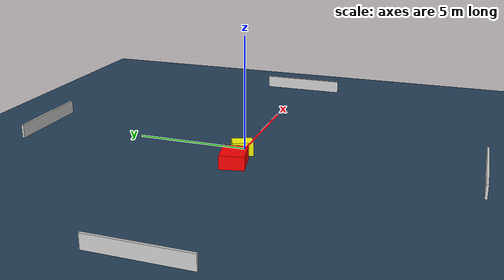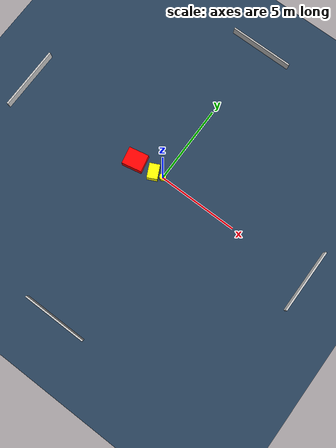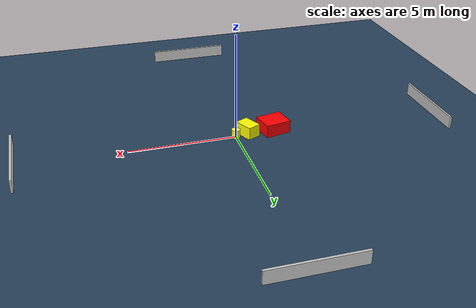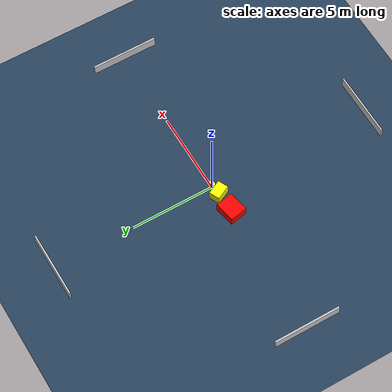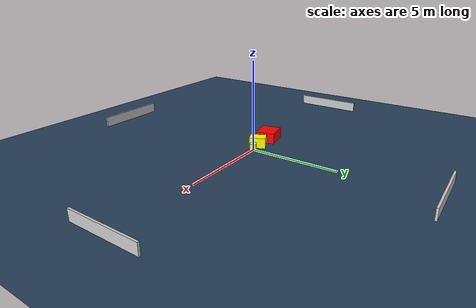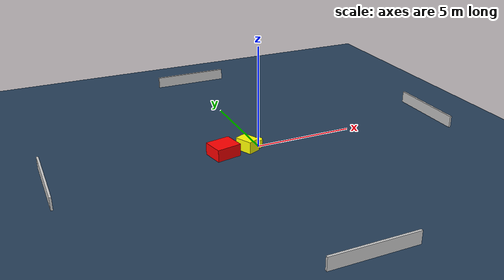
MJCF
<?xml version="1.0" ?>
<mujoco model="generated_environment">
  <option timestep="0.01" integrator="RK4" cone="elliptic"/>
  <default>
    <geom density="1"/>
  </default>
  <asset>
    <texture builtin="gradient" height="3072" name="skybox" rgb1="0.3 0.5 0.7" rgb2="0 0 0" type="skybox" width="512"/>
    <texture builtin="checker" height="300" name="groundplane" rgb1="0.2 0.3 0.4" rgb2="0.1 0.2 0.3" type="2d" width="300"/>
    <material name="groundplane" reflectance="0.2" texrepeat="5 5" texture="groundplane"/>
  </asset>
  <worldbody>
    <light dir="0 0 -1" directional="true" pos="0 0 1.5"/>
    <geom condim="3" friction="0.5 0.005 0.001" material="groundplane" name="floor" pos="0 0 0" size="0 0 0.05" type="plane"/>
    <body name="walls">
      <geom name="wall_1" condim="4" pos="-10.0 0.0 0.3" rgba="0.800000011920929 0.800000011920929 0.800000011920929 1.0" size="0.05 2.0 0.3" type="box"/>
      <geom name="wall_2" condim="4" pos="10.0 0.0 0.3" rgba="0.800000011920929 0.800000011920929 0.800000011920929 1.0" size="0.05 2.0 0.3" type="box"/>
      <geom name="wall_3" condim="4" pos="0.0 -10.0 0.3" rgba="0.800000011920929 0.800000011920929 0.800000011920929 1.0" size="2.0 0.05 0.3" type="box"/>
      <geom name="wall_4" condim="4" pos="0.0 10.0 0.3" rgba="0.800000011920929 0.800000011920929 0.800000011920929 1.0" size="2.0 0.05 0.3" type="box"/>
    </body>
    <body name="robot">
      <joint name="joint_x" type="slide" pos="0 0 0" axis="1 0 0"/>
      <joint name="joint_y" type="slide" pos="0 0 0" axis="0 1 0"/>
      <geom name="robot" type="cylinder" pos="0.0 0.0 0.2" size="0.2 0.2 0.0" mass="5.0" friction="1.0 0.005 0.0001" condim="4" rgba="1.0 1.0 0.0 1.0"/>
    </body>
    <body name="obstacle_1_movable">
      <geom name="obstacle_1_movable" condim="4" pos="-0.6089231391635387 -0.09125150878202702 0.3" euler="0 0 115.65026772927392" friction="0.0 0.005 0.001" rgba="1.0 1.0 0.0 1.0" size="0.45168269467238176 0.3199818261008947 0.3" type="box" mass="0.1"/>
      <joint type="free"/>
    </body>
    <body name="obstacle_2_static">
      <geom name="obstacle_2_static" condim="4" pos="-1.8770745190680949 -0.16018460691126218 0.3" euler="0 0 101.44776752809649" friction="0.0 0.005 0.001" rgba="1.0 0.0 0.0 1.0" size="0.5313834435088682 0.6186250570985063 0.3" type="box"/>
    </body>
  </worldbody>
  <actuator>
    <motor name="actuator_x" joint="joint_x" gear="1" ctrlrange="-1 1"/>
    <motor name="actuator_y" joint="joint_y" gear="1" ctrlrange="-1 1"/>
  </actuator>
</mujoco>
